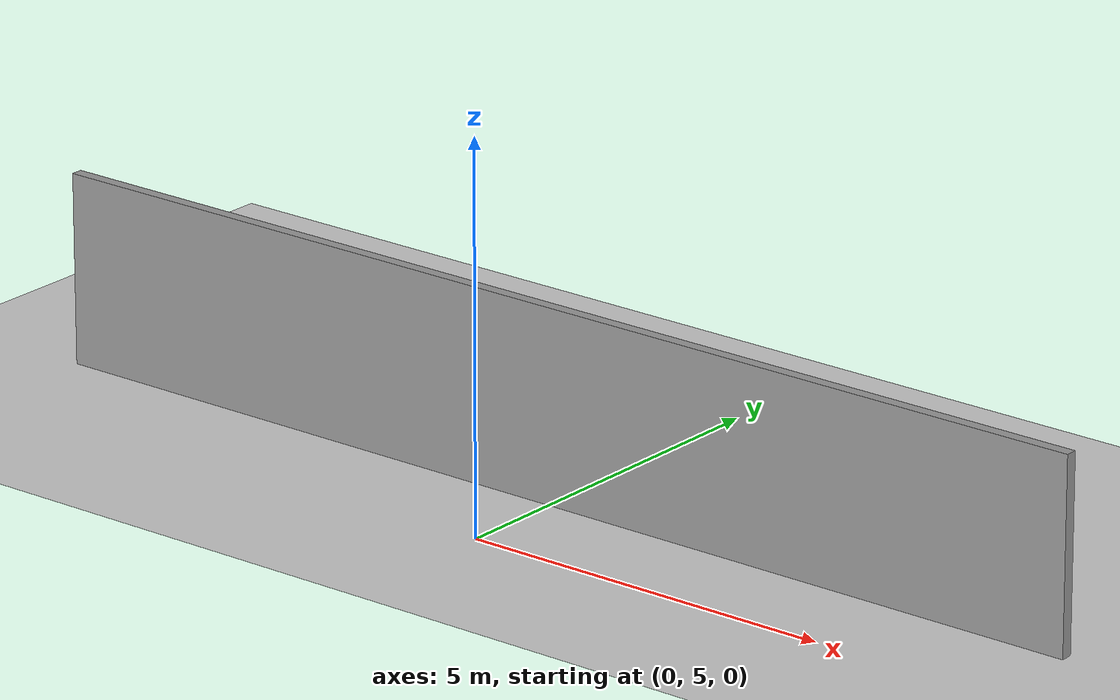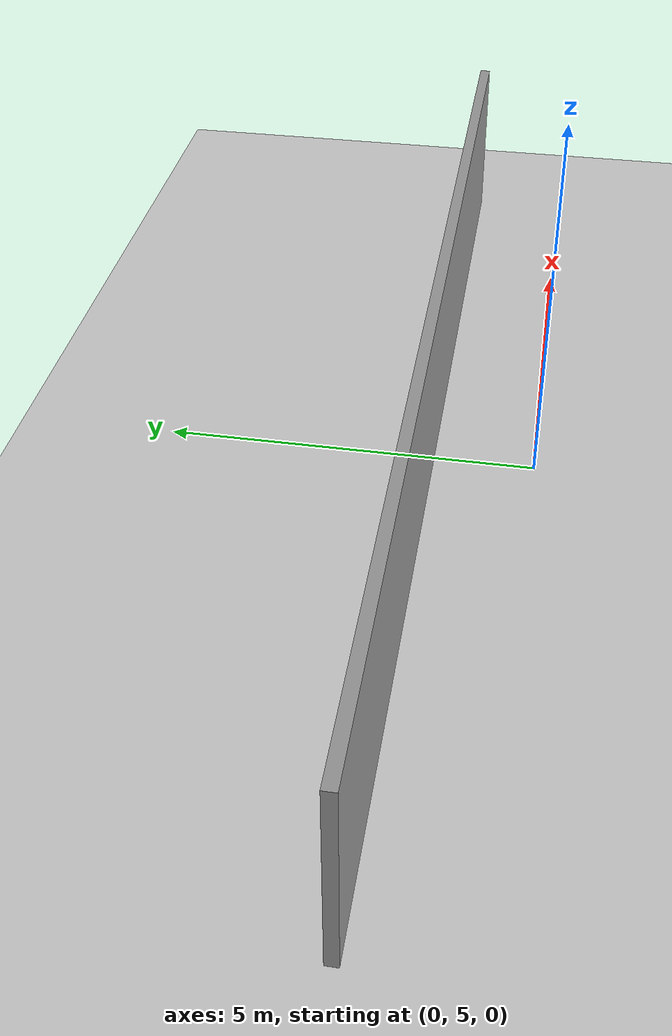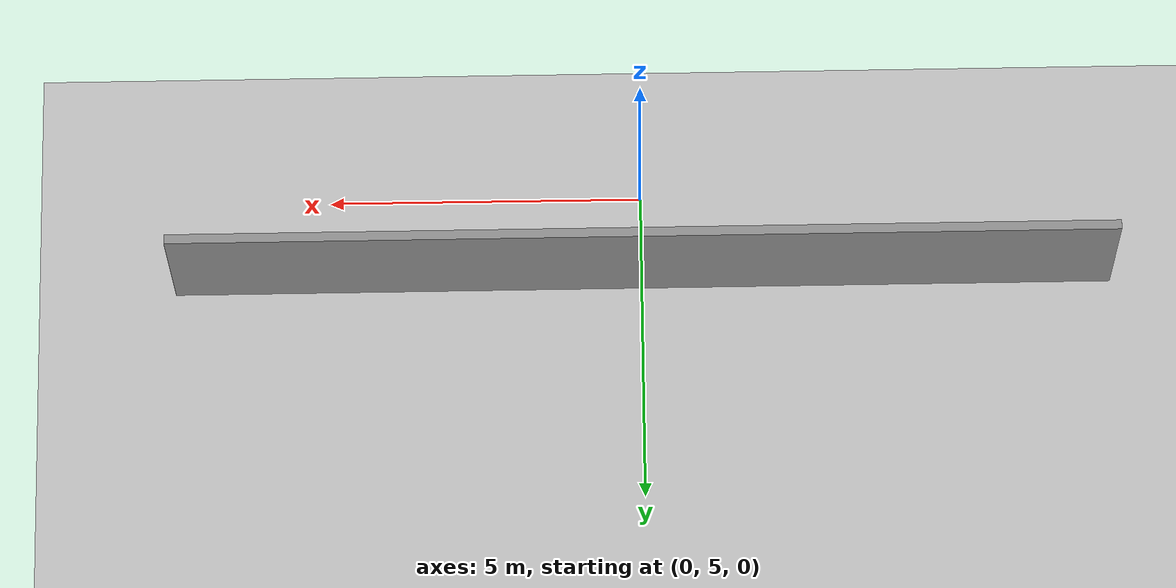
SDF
<sdf version="1.7">
 <world name="default">
  <model name="ground_plane">
   <static>1</static>
   <link name="link">
    <collision name="collision">
     <geometry><plane><normal>0 0 1</normal><size>100 100</size></plane></geometry>
     <surface>
      <contact><collide_bitmask>65535</collide_bitmask></contact>
      <friction><ode><mu>100</mu><mu2>50</mu2></ode></friction>
     </surface>
    </collision>
    <visual name="visual">
     <cast_shadows>0</cast_shadows>
     <geometry><plane><normal>0 0 1</normal><size>100 100</size></plane></geometry>
     <material>
      <script><uri>file://media/materials/scripts/gazebo.material</uri><name>Gazebo/Grey</name></script>
     </material>
    </visual>
   </link>
  </model>
  <model name="my_building_p4">
   <link name="Wall_27">
    <pose>0 3.46508 0 0 -0 3.14159</pose>
    <visual name="Wall_27_Visual">
     <pose>0 0 1.25 0 -0 0</pose>
     <geometry><box><size>15 0.15 2.5</size></box></geometry>
     <material>
      <script><uri>file://media/materials/scripts/gazebo.material</uri><name>Gazebo/Grey</name></script>
      <ambient>1 1 1 1</ambient>
      <shader type="pixel"/>
     </material>
     <meta><layer>0</layer></meta>
    </visual>
    <collision name="Wall_27_Collision">
     <pose>0 0 1.25 0 -0 0</pose>
     <geometry><box><size>15 0.15 2.5</size></box></geometry>
     <surface>
      <friction>
       <ode><mu>1</mu><mu2>1</mu2><fdir1>0 0 0</fdir1><slip1>0</slip1><slip2>0</slip2></ode>
       <torsional>
        <coefficient>1</coefficient>
        <patch_radius>0</patch_radius>
        <surface_radius>0</surface_radius>
        <use_patch_radius>1</use_patch_radius>
        <ode><slip>0</slip></ode>
       </torsional>
      </friction>
      <bounce><restitution_coefficient>0</restitution_coefficient><threshold>1e+06</threshold></bounce>
      <contact>
       <collide_without_contact>0</collide_without_contact>
       <collide_without_contact_bitmask>1</collide_without_contact_bitmask>
       <collide_bitmask>1</collide_bitmask>
       <ode>
        <soft_cfm>0</soft_cfm>
        <soft_erp>0.2</soft_erp>
        <kp>1e+13</kp>
        <kd>1</kd>
        <max_vel>0.01</max_vel>
        <min_depth>0</min_depth>
       </ode>
       <bullet>
        <split_impulse>1</split_impulse>
        <split_impulse_penetration_threshold>-0.01</split_impulse_penetration_threshold>
        <soft_cfm>0</soft_cfm>
        <soft_erp>0.2</soft_erp>
        <kp>1e+13</kp>
        <kd>1</kd>
       </bullet>
      </contact>
     </surface>
    </collision>
   </link>
   <static>1</static>
   <pose>-0.017657 2.964 0 0 -0 0</pose>
  </model>
 </world>
</sdf>
